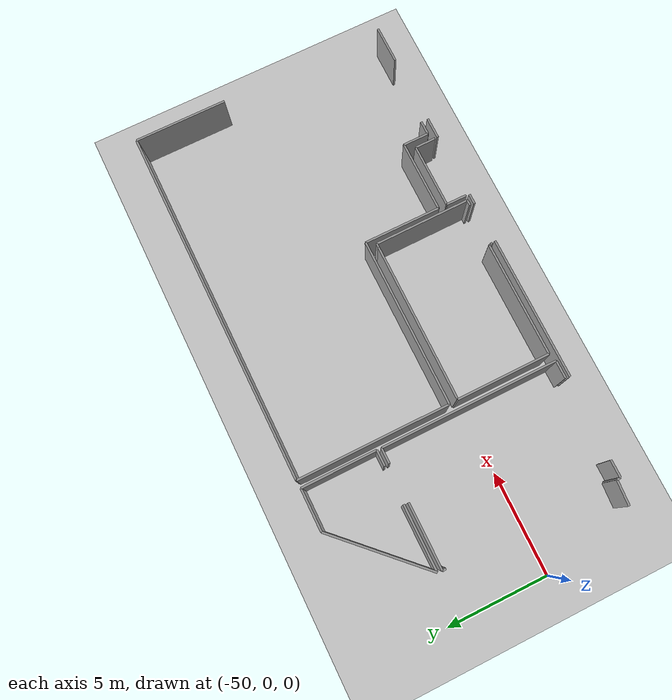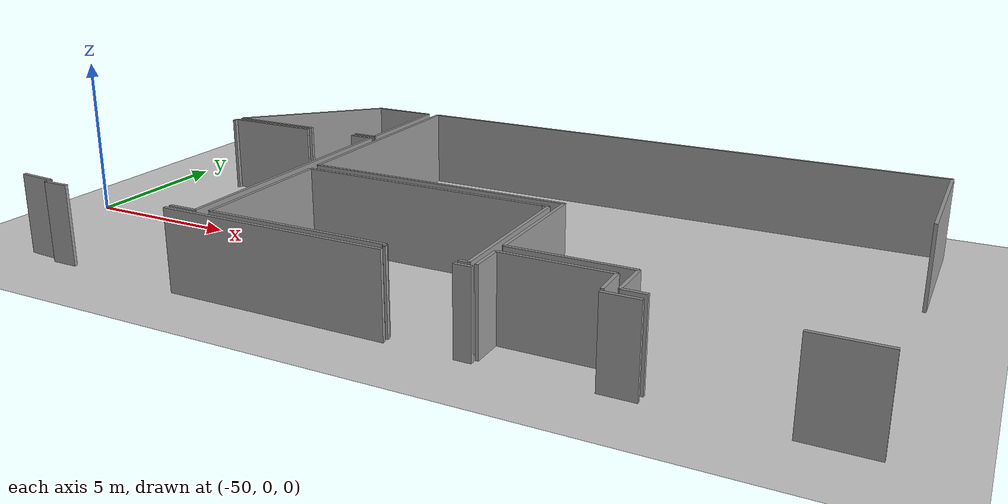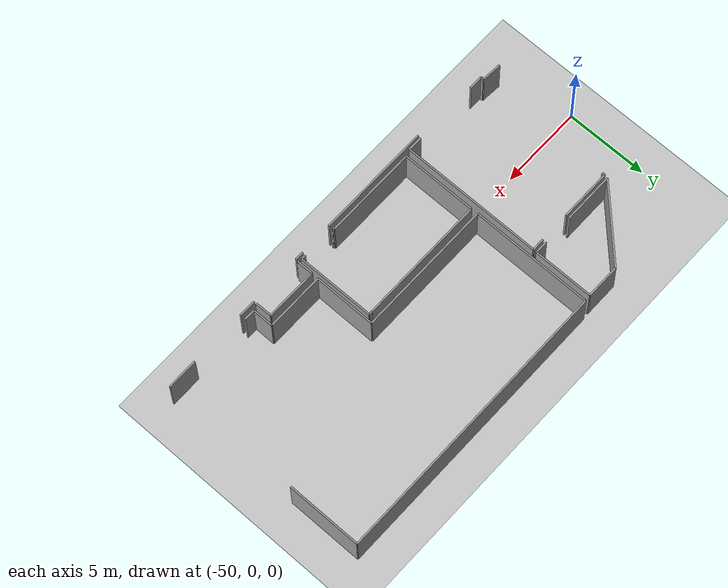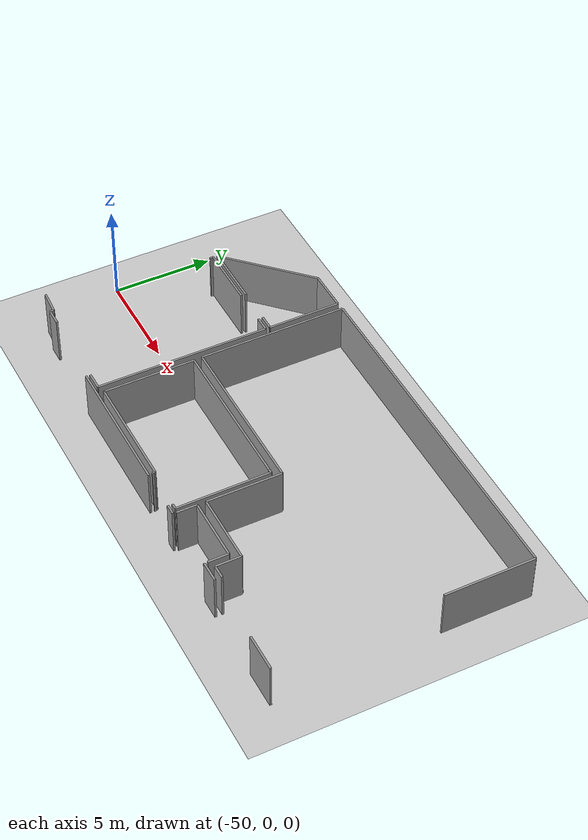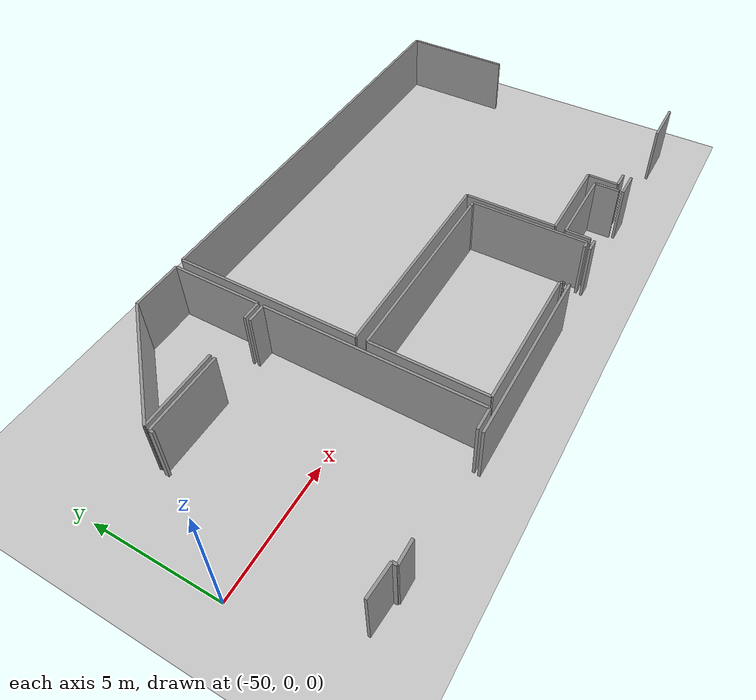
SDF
<sdf version="1.6">
 <world name="default">
  <model name="ground_plane">
   <static>1</static>
   <link name="link">
    <collision name="collision">
     <geometry><plane><normal>0 0 1</normal><size>100 100</size></plane></geometry>
     <surface><friction><ode><mu>100</mu><mu2>50</mu2></ode></friction></surface>
    </collision>
    <visual name="visual">
     <cast_shadows>0</cast_shadows>
     <geometry><plane><normal>0 0 1</normal><size>100 100</size></plane></geometry>
     <material>
      <script><uri>file://media/materials/scripts/gazebo.material</uri><name>Gazebo/Grey</name></script>
     </material>
    </visual>
   </link>
  </model>
  <model name="50041186">
   <static>1</static>
   <link name="Wall_24">
    <collision name="Wall_24_Collision">
     <geometry><box><size>6.98346818975 0.1 2.5</size></box></geometry>
     <pose>3.49173409488 0 1.25 0 0 0</pose>
    </collision>
    <visual name="Wall_24_Visual">
     <pose>3.49173409488 0 1.25 0 0 0</pose>
     <geometry><box><size>6.98346818975 0.1 2.5</size></box></geometry>
     <material>
      <script><uri>file://media/materials/scripts/gazebo.material</uri><name>Gazebo/Grey</name></script>
      <ambient>1 1 1 1</ambient>
     </material>
    </visual>
    <pose>17.1131207362 -12.9118197684 0 0 0 0.0</pose>
   </link>
   <link name="Wall_25">
    <collision name="Wall_25_Collision">
     <geometry><box><size>0.503125495796 0.1 2.5</size></box></geometry>
     <pose>0.251562747898 0 1.25 0 0 0</pose>
    </collision>
    <visual name="Wall_25_Visual">
     <pose>0.251562747898 0 1.25 0 0 0</pose>
     <geometry><box><size>0.503125495796 0.1 2.5</size></box></geometry>
     <material>
      <script><uri>file://media/materials/scripts/gazebo.material</uri><name>Gazebo/Grey</name></script>
      <ambient>1 1 1 1</ambient>
     </material>
    </visual>
    <pose>26.0928446771 -12.9118197684 0 0 0 0.0</pose>
   </link>
   <link name="Wall_26">
    <collision name="Wall_26_Collision">
     <geometry><box><size>1.02110106299 0.1 2.5</size></box></geometry>
     <pose>0.510550531493 0 1.25 0 0 0</pose>
    </collision>
    <visual name="Wall_26_Visual">
     <pose>0.510550531493 0 1.25 0 0 0</pose>
     <geometry><box><size>1.02110106299 0.1 2.5</size></box></geometry>
     <material>
      <script><uri>file://media/materials/scripts/gazebo.material</uri><name>Gazebo/Grey</name></script>
      <ambient>1 1 1 1</ambient>
     </material>
    </visual>
    <pose>29.7769316199 -12.9118197684 0 0 0 0.0</pose>
   </link>
   <link name="Wall_27">
    <collision name="Wall_27_Collision">
     <geometry><box><size>1.84572425829 0.1 2.5</size></box></geometry>
     <pose>0.922862129145 0 1.25 0 0 0</pose>
    </collision>
    <visual name="Wall_27_Visual">
     <pose>0.922862129145 0 1.25 0 0 0</pose>
     <geometry><box><size>1.84572425829 0.1 2.5</size></box></geometry>
     <material>
      <script><uri>file://media/materials/scripts/gazebo.material</uri><name>Gazebo/Grey</name></script>
      <ambient>1 1 1 1</ambient>
     </material>
    </visual>
    <pose>34.1938759321 -12.9118197684 0 0 0 0.0</pose>
   </link>
   <link name="Wall_30">
    <collision name="Wall_30_Collision">
     <geometry><box><size>0.87348881485 0.1 2.5</size></box></geometry>
     <pose>0.436744407425 0 1.25 0 0 0</pose>
    </collision>
    <visual name="Wall_30_Visual">
     <pose>0.436744407425 0 1.25 0 0 0</pose>
     <geometry><box><size>0.87348881485 0.1 2.5</size></box></geometry>
     <material>
      <script><uri>file://media/materials/scripts/gazebo.material</uri><name>Gazebo/Grey</name></script>
      <ambient>1 1 1 1</ambient>
     </material>
    </visual>
    <pose>18.0135173727 -12.7075995558 0 0 0 3.14159265359</pose>
   </link>
   <link name="Wall_31">
    <collision name="Wall_31_Collision">
     <geometry><box><size>0.841757893067 0.1 2.5</size></box></geometry>
     <pose>0.420878946533 0 1.25 0 0 0</pose>
    </collision>
    <visual name="Wall_31_Visual">
     <pose>0.420878946533 0 1.25 0 0 0</pose>
     <geometry><box><size>0.841757893067 0.1 2.5</size></box></geometry>
     <material>
      <script><uri>file://media/materials/scripts/gazebo.material</uri><name>Gazebo/Grey</name></script>
      <ambient>1 1 1 1</ambient>
     </material>
    </visual>
    <pose>13.1731556402 -12.7075995558 0 0 0 3.14159265359</pose>
   </link>
   <link name="Wall_32">
    <collision name="Wall_32_Collision">
     <geometry><box><size>0.181373948913 0.1 2.5</size></box></geometry>
     <pose>0.0906869744566 0 1.25 0 0 0</pose>
    </collision>
    <visual name="Wall_32_Visual">
     <pose>0.0906869744566 0 1.25 0 0 0</pose>
     <geometry><box><size>0.181373948913 0.1 2.5</size></box></geometry>
     <material>
      <script><uri>file://media/materials/scripts/gazebo.material</uri><name>Gazebo/Grey</name></script>
      <ambient>1 1 1 1</ambient>
     </material>
    </visual>
    <pose>12.3313977471 -12.7075995558 0 0 0 1.57079632679</pose>
   </link>
   <link name="Wall_33">
    <collision name="Wall_33_Collision">
     <geometry><box><size>1.19602337415 0.1 2.5</size></box></geometry>
     <pose>0.598011687073 0 1.25 0 0 0</pose>
    </collision>
    <visual name="Wall_33_Visual">
     <pose>0.598011687073 0 1.25 0 0 0</pose>
     <geometry><box><size>1.19602337415 0.1 2.5</size></box></geometry>
     <material>
      <script><uri>file://media/materials/scripts/gazebo.material</uri><name>Gazebo/Grey</name></script>
      <ambient>1 1 1 1</ambient>
     </material>
    </visual>
    <pose>12.3313977471 -12.5262256069 0 0 0 3.07298441104</pose>
   </link>
   <link name="Wall_45">
    <collision name="Wall_45_Collision">
     <geometry><box><size>0.176550848802 0.1 2.5</size></box></geometry>
     <pose>0.0882754244011 0 1.25 0 0 0</pose>
    </collision>
    <visual name="Wall_45_Visual">
     <pose>0.0882754244011 0 1.25 0 0 0</pose>
     <geometry><box><size>0.176550848802 0.1 2.5</size></box></geometry>
     <material>
      <script><uri>file://media/materials/scripts/gazebo.material</uri><name>Gazebo/Grey</name></script>
      <ambient>1 1 1 1</ambient>
     </material>
    </visual>
    <pose>12.311978423 -4.28494367761 0 0 0 1.57079632679</pose>
   </link>
   <link name="Wall_46">
    <collision name="Wall_46_Collision">
     <geometry><box><size>3.12321116928 0.1 2.5</size></box></geometry>
     <pose>1.56160558464 0 1.25 0 0 0</pose>
    </collision>
    <visual name="Wall_46_Visual">
     <pose>1.56160558464 0 1.25 0 0 0</pose>
     <geometry><box><size>3.12321116928 0.1 2.5</size></box></geometry>
     <material>
      <script><uri>file://media/materials/scripts/gazebo.material</uri><name>Gazebo/Grey</name></script>
      <ambient>1 1 1 1</ambient>
     </material>
    </visual>
    <pose>12.311978423 -4.10839282881 0 0 0 0.0</pose>
   </link>
   <link name="Wall_47">
    <collision name="Wall_47_Collision">
     <geometry><box><size>0.753926701571 0.1 2.5</size></box></geometry>
     <pose>0.376963350785 0 1.25 0 0 0</pose>
    </collision>
    <visual name="Wall_47_Visual">
     <pose>0.376963350785 0 1.25 0 0 0</pose>
     <geometry><box><size>0.753926701571 0.1 2.5</size></box></geometry>
     <material>
      <script><uri>file://media/materials/scripts/gazebo.material</uri><name>Gazebo/Grey</name></script>
      <ambient>1 1 1 1</ambient>
     </material>
    </visual>
    <pose>17.2600983659 -4.10839282881 0 0 0 0.0</pose>
   </link>
   <link name="Wall_48">
    <collision name="Wall_48_Collision">
     <geometry><box><size>8.59920674194 0.1 2.5</size></box></geometry>
     <pose>4.29960337097 0 1.25 0 0 0</pose>
    </collision>
    <visual name="Wall_48_Visual">
     <pose>4.29960337097 0 1.25 0 0 0</pose>
     <geometry><box><size>8.59920674194 0.1 2.5</size></box></geometry>
     <material>
      <script><uri>file://media/materials/scripts/gazebo.material</uri><name>Gazebo/Grey</name></script>
      <ambient>1 1 1 1</ambient>
     </material>
    </visual>
    <pose>18.0140250674 -4.10839282881 0 0 0 -1.57085536651</pose>
   </link>
   <link name="Wall_49">
    <collision name="Wall_49_Collision">
     <geometry><box><size>0.766238299223 0.1 2.5</size></box></geometry>
     <pose>0.383119149611 0 1.25 0 0 0</pose>
    </collision>
    <visual name="Wall_49_Visual">
     <pose>0.383119149611 0 1.25 0 0 0</pose>
     <geometry><box><size>0.766238299223 0.1 2.5</size></box></geometry>
     <material>
      <script><uri>file://media/materials/scripts/gazebo.material</uri><name>Gazebo/Grey</name></script>
      <ambient>1 1 1 1</ambient>
     </material>
    </visual>
    <pose>18.0224020308 -3.88640330002 0 0 0 3.14159265359</pose>
   </link>
   <link name="Wall_50">
    <collision name="Wall_50_Collision">
     <geometry><box><size>3.10239568459 0.1 2.5</size></box></geometry>
     <pose>1.5511978423 0 1.25 0 0 0</pose>
    </collision>
    <visual name="Wall_50_Visual">
     <pose>1.5511978423 0 1.25 0 0 0</pose>
     <geometry><box><size>3.10239568459 0.1 2.5</size></box></geometry>
     <material>
      <script><uri>file://media/materials/scripts/gazebo.material</uri><name>Gazebo/Grey</name></script>
      <ambient>1 1 1 1</ambient>
     </material>
    </visual>
    <pose>15.4528319848 -3.88640330002 0 0 0 3.14159265359</pose>
   </link>
   <link name="Wall_51">
    <collision name="Wall_51_Collision">
     <geometry><box><size>5.12652999993 0.1 2.5</size></box></geometry>
     <pose>2.56326499996 0 1.25 0 0 0</pose>
    </collision>
    <visual name="Wall_51_Visual">
     <pose>2.56326499996 0 1.25 0 0 0</pose>
     <geometry><box><size>5.12652999993 0.1 2.5</size></box></geometry>
     <material>
      <script><uri>file://media/materials/scripts/gazebo.material</uri><name>Gazebo/Grey</name></script>
      <ambient>1 1 1 1</ambient>
     </material>
    </visual>
    <pose>12.3504363002 -3.88640330002 0 0 0 0.785100549569</pose>
   </link>
   <link name="Wall_52">
    <collision name="Wall_52_Collision">
     <geometry><box><size>2.03750594955 0.1 2.5</size></box></geometry>
     <pose>1.01875297477 0 1.25 0 0 0</pose>
    </collision>
    <visual name="Wall_52_Visual">
     <pose>1.01875297477 0 1.25 0 0 0</pose>
     <geometry><box><size>2.03750594955 0.1 2.5</size></box></geometry>
     <material>
      <script><uri>file://media/materials/scripts/gazebo.material</uri><name>Gazebo/Grey</name></script>
      <ambient>1 1 1 1</ambient>
     </material>
    </visual>
    <pose>15.9765191179 -0.262478184991 0 0 0 0.0</pose>
   </link>
   <link name="Wall_53">
    <collision name="Wall_53_Collision">
     <geometry><box><size>3.62393479699 0.1 2.5</size></box></geometry>
     <pose>1.81196739849 0 1.25 0 0 0</pose>
    </collision>
    <visual name="Wall_53_Visual">
     <pose>1.81196739849 0 1.25 0 0 0</pose>
     <geometry><box><size>3.62393479699 0.1 2.5</size></box></geometry>
     <material>
      <script><uri>file://media/materials/scripts/gazebo.material</uri><name>Gazebo/Grey</name></script>
      <ambient>1 1 1 1</ambient>
     </material>
    </visual>
    <pose>18.0140250674 -0.262478184991 0 0 0 -1.56848475904</pose>
   </link>
   <link name="Wall_54">
    <collision name="Wall_54_Collision">
     <geometry><box><size>0.271362843091 0.1 2.5</size></box></geometry>
     <pose>0.135681421545 0 1.25 0 0 0</pose>
    </collision>
    <visual name="Wall_54_Visual">
     <pose>0.135681421545 0 1.25 0 0 0</pose>
     <geometry><box><size>0.271362843091 0.1 2.5</size></box></geometry>
     <material>
      <script><uri>file://media/materials/scripts/gazebo.material</uri><name>Gazebo/Grey</name></script>
      <ambient>1 1 1 1</ambient>
     </material>
    </visual>
    <pose>26.389846105 -12.6956687292 0 0 0 3.14159265359</pose>
   </link>
   <link name="Wall_55">
    <collision name="Wall_55_Collision">
     <geometry><box><size>0.0767888307155 0.1 2.5</size></box></geometry>
     <pose>0.0383944153578 0 1.25 0 0 0</pose>
    </collision>
    <visual name="Wall_55_Visual">
     <pose>0.0383944153578 0 1.25 0 0 0</pose>
     <geometry><box><size>0.0767888307155 0.1 2.5</size></box></geometry>
     <material>
      <script><uri>file://media/materials/scripts/gazebo.material</uri><name>Gazebo/Grey</name></script>
      <ambient>1 1 1 1</ambient>
     </material>
    </visual>
    <pose>24.0986197049 -12.6956687292 0 0 0 3.14159265359</pose>
   </link>
   <link name="Wall_56">
    <collision name="Wall_56_Collision">
     <geometry><box><size>0.118546723782 0.1 2.5</size></box></geometry>
     <pose>0.0592733618912 0 1.25 0 0 0</pose>
    </collision>
    <visual name="Wall_56_Visual">
     <pose>0.0592733618912 0 1.25 0 0 0</pose>
     <geometry><box><size>0.118546723782 0.1 2.5</size></box></geometry>
     <material>
      <script><uri>file://media/materials/scripts/gazebo.material</uri><name>Gazebo/Grey</name></script>
      <ambient>1 1 1 1</ambient>
     </material>
    </visual>
    <pose>24.0218308742 -12.6956687292 0 0 0 1.57079632679</pose>
   </link>
   <link name="Wall_57">
    <collision name="Wall_57_Collision">
     <geometry><box><size>5.60228462637 0.1 2.5</size></box></geometry>
     <pose>2.80114231318 0 1.25 0 0 0</pose>
    </collision>
    <visual name="Wall_57_Visual">
     <pose>2.80114231318 0 1.25 0 0 0</pose>
     <geometry><box><size>5.60228462637 0.1 2.5</size></box></geometry>
     <material>
      <script><uri>file://media/materials/scripts/gazebo.material</uri><name>Gazebo/Grey</name></script>
      <ambient>1 1 1 1</ambient>
     </material>
    </visual>
    <pose>24.0218308742 -12.5771220054 0 0 0 3.14159265359</pose>
   </link>
   <link name="Wall_58">
    <collision name="Wall_58_Collision">
     <geometry><box><size>4.54894494685 0.1 2.5</size></box></geometry>
     <pose>2.27447247343 0 1.25 0 0 0</pose>
    </collision>
    <visual name="Wall_58_Visual">
     <pose>2.27447247343 0 1.25 0 0 0</pose>
     <geometry><box><size>4.54894494685 0.1 2.5</size></box></geometry>
     <material>
      <script><uri>file://media/materials/scripts/gazebo.material</uri><name>Gazebo/Grey</name></script>
      <ambient>1 1 1 1</ambient>
     </material>
    </visual>
    <pose>18.4195462478 -12.5771220054 0 0 0 1.57079632679</pose>
   </link>
   <link name="Wall_59">
    <collision name="Wall_59_Collision">
     <geometry><box><size>7.7494526416 0.1 2.5</size></box></geometry>
     <pose>3.8747263208 0 1.25 0 0 0</pose>
    </collision>
    <visual name="Wall_59_Visual">
     <pose>3.8747263208 0 1.25 0 0 0</pose>
     <geometry><box><size>7.7494526416 0.1 2.5</size></box></geometry>
     <material>
      <script><uri>file://media/materials/scripts/gazebo.material</uri><name>Gazebo/Grey</name></script>
      <ambient>1 1 1 1</ambient>
     </material>
    </visual>
    <pose>18.4195462478 -8.02817705854 0 0 0 0.0</pose>
   </link>
   <link name="Wall_60">
    <collision name="Wall_60_Collision">
     <geometry><box><size>0.189243217515 0.1 2.5</size></box></geometry>
     <pose>0.0946216087577 0 1.25 0 0 0</pose>
    </collision>
    <visual name="Wall_60_Visual">
     <pose>0.0946216087577 0 1.25 0 0 0</pose>
     <geometry><box><size>0.189243217515 0.1 2.5</size></box></geometry>
     <material>
      <script><uri>file://media/materials/scripts/gazebo.material</uri><name>Gazebo/Grey</name></script>
      <ambient>1 1 1 1</ambient>
     </material>
    </visual>
    <pose>26.1689988894 -8.02817705854 0 0 0 0.0</pose>
   </link>
   <link name="Wall_61">
    <collision name="Wall_61_Collision">
     <geometry><box><size>4.66759866614 0.1 2.5</size></box></geometry>
     <pose>2.33379933307 0 1.25 0 0 0</pose>
    </collision>
    <visual name="Wall_61_Visual">
     <pose>2.33379933307 0 1.25 0 0 0</pose>
     <geometry><box><size>4.66759866614 0.1 2.5</size></box></geometry>
     <material>
      <script><uri>file://media/materials/scripts/gazebo.material</uri><name>Gazebo/Grey</name></script>
      <ambient>1 1 1 1</ambient>
     </material>
    </visual>
    <pose>26.3582421069 -8.02817705854 0 0 0 -1.564025342</pose>
   </link>
   <link name="Wall_62">
    <collision name="Wall_62_Collision">
     <geometry><box><size>1.00472790735 0.1 2.5</size></box></geometry>
     <pose>0.502363953673 0 1.25 0 0 0</pose>
    </collision>
    <visual name="Wall_62_Visual">
     <pose>0.502363953673 0 1.25 0 0 0</pose>
     <geometry><box><size>1.00472790735 0.1 2.5</size></box></geometry>
     <material>
      <script><uri>file://media/materials/scripts/gazebo.material</uri><name>Gazebo/Grey</name></script>
      <ambient>1 1 1 1</ambient>
     </material>
    </visual>
    <pose>26.6283357132 -12.7587498017 0 0 0 1.57079632679</pose>
   </link>
   <link name="Wall_63">
    <collision name="Wall_63_Collision">
     <geometry><box><size>3.13323814057 0.1 2.5</size></box></geometry>
     <pose>1.56661907028 0 1.25 0 0 0</pose>
    </collision>
    <visual name="Wall_63_Visual">
     <pose>1.56661907028 0 1.25 0 0 0</pose>
     <geometry><box><size>3.13323814057 0.1 2.5</size></box></geometry>
     <material>
      <script><uri>file://media/materials/scripts/gazebo.material</uri><name>Gazebo/Grey</name></script>
      <ambient>1 1 1 1</ambient>
     </material>
    </visual>
    <pose>26.6283357132 -11.7540218943 0 0 0 0.0</pose>
   </link>
   <link name="Wall_64">
    <collision name="Wall_64_Collision">
     <geometry><box><size>1.00487184863 0.1 2.5</size></box></geometry>
     <pose>0.502435924317 0 1.25 0 0 0</pose>
    </collision>
    <visual name="Wall_64_Visual">
     <pose>0.502435924317 0 1.25 0 0 0</pose>
     <geometry><box><size>1.00487184863 0.1 2.5</size></box></geometry>
     <material>
      <script><uri>file://media/materials/scripts/gazebo.material</uri><name>Gazebo/Grey</name></script>
      <ambient>1 1 1 1</ambient>
     </material>
    </visual>
    <pose>29.7615738537 -11.7540218943 0 0 0 -1.55387020211</pose>
   </link>
   <link name="Wall_66">
    <collision name="Wall_66_Collision">
     <geometry><box><size>0.673203236554 0.1 2.5</size></box></geometry>
     <pose>0.336601618277 0 1.25 0 0 0</pose>
    </collision>
    <visual name="Wall_66_Visual">
     <pose>0.336601618277 0 1.25 0 0 0</pose>
     <geometry><box><size>0.673203236554 0.1 2.5</size></box></geometry>
     <material>
      <script><uri>file://media/materials/scripts/gazebo.material</uri><name>Gazebo/Grey</name></script>
      <ambient>1 1 1 1</ambient>
     </material>
    </visual>
    <pose>30.8055211804 -12.5740758369 0 0 0 3.14159265359</pose>
   </link>
   <link name="Wall_67">
    <collision name="Wall_67_Collision">
     <geometry><box><size>1.24626368396 0.1 2.5</size></box></geometry>
     <pose>0.62313184198 0 1.25 0 0 0</pose>
    </collision>
    <visual name="Wall_67_Visual">
     <pose>0.62313184198 0 1.25 0 0 0</pose>
     <geometry><box><size>1.24626368396 0.1 2.5</size></box></geometry>
     <material>
      <script><uri>file://media/materials/scripts/gazebo.material</uri><name>Gazebo/Grey</name></script>
      <ambient>1 1 1 1</ambient>
     </material>
    </visual>
    <pose>30.1323179438 -12.5740758369 0 0 0 1.57079632679</pose>
   </link>
   <link name="Wall_68">
    <collision name="Wall_68_Collision">
     <geometry><box><size>3.49763604633 0.1 2.5</size></box></geometry>
     <pose>1.74881802316 0 1.25 0 0 0</pose>
    </collision>
    <visual name="Wall_68_Visual">
     <pose>1.74881802316 0 1.25 0 0 0</pose>
     <geometry><box><size>3.49763604633 0.1 2.5</size></box></geometry>
     <material>
      <script><uri>file://media/materials/scripts/gazebo.material</uri><name>Gazebo/Grey</name></script>
      <ambient>1 1 1 1</ambient>
     </material>
    </visual>
    <pose>30.1323179438 -11.3278121529 0 0 0 3.14159265359</pose>
   </link>
   <link name="Wall_69">
    <collision name="Wall_69_Collision">
     <geometry><box><size>3.71924480406 0.1 2.5</size></box></geometry>
     <pose>1.85962240203 0 1.25 0 0 0</pose>
    </collision>
    <visual name="Wall_69_Visual">
     <pose>1.85962240203 0 1.25 0 0 0</pose>
     <geometry><box><size>3.71924480406 0.1 2.5</size></box></geometry>
     <material>
      <script><uri>file://media/materials/scripts/gazebo.material</uri><name>Gazebo/Grey</name></script>
      <ambient>1 1 1 1</ambient>
     </material>
    </visual>
    <pose>26.6346818975 -11.3278121529 0 0 0 1.57079632679</pose>
   </link>
   <link name="Wall_70">
    <collision name="Wall_70_Collision">
     <geometry><box><size>8.23950499762 0.1 2.5</size></box></geometry>
     <pose>4.11975249881 0 1.25 0 0 0</pose>
    </collision>
    <visual name="Wall_70_Visual">
     <pose>4.11975249881 0 1.25 0 0 0</pose>
     <geometry><box><size>8.23950499762 0.1 2.5</size></box></geometry>
     <material>
      <script><uri>file://media/materials/scripts/gazebo.material</uri><name>Gazebo/Grey</name></script>
      <ambient>1 1 1 1</ambient>
     </material>
    </visual>
    <pose>26.6346818975 -7.60856734888 0 0 0 3.14159265359</pose>
   </link>
   <link name="Wall_71">
    <collision name="Wall_71_Collision">
     <geometry><box><size>7.38391242266 0.1 2.5</size></box></geometry>
     <pose>3.69195621133 0 1.25 0 0 0</pose>
    </collision>
    <visual name="Wall_71_Visual">
     <pose>3.69195621133 0 1.25 0 0 0</pose>
     <geometry><box><size>7.38391242266 0.1 2.5</size></box></geometry>
     <material>
      <script><uri>file://media/materials/scripts/gazebo.material</uri><name>Gazebo/Grey</name></script>
      <ambient>1 1 1 1</ambient>
     </material>
    </visual>
    <pose>18.3951768999 -7.60856734888 0 0 0 1.57079632679</pose>
   </link>
   <link name="Wall_72">
    <collision name="Wall_72_Collision">
     <geometry><box><size>17.4773917182 0.1 2.5</size></box></geometry>
     <pose>8.73869585911 0 1.25 0 0 0</pose>
    </collision>
    <visual name="Wall_72_Visual">
     <pose>8.73869585911 0 1.25 0 0 0</pose>
     <geometry><box><size>17.4773917182 0.1 2.5</size></box></geometry>
     <material>
      <script><uri>file://media/materials/scripts/gazebo.material</uri><name>Gazebo/Grey</name></script>
      <ambient>1 1 1 1</ambient>
     </material>
    </visual>
    <pose>18.3951768999 -0.224654926226 0 0 0 0.0</pose>
   </link>
   <link name="Wall_73">
    <collision name="Wall_73_Collision">
     <geometry><box><size>4.4942408377 0.1 2.5</size></box></geometry>
     <pose>2.24712041885 0 1.25 0 0 0</pose>
    </collision>
    <visual name="Wall_73_Visual">
     <pose>2.24712041885 0 1.25 0 0 0</pose>
     <geometry><box><size>4.4942408377 0.1 2.5</size></box></geometry>
     <material>
      <script><uri>file://media/materials/scripts/gazebo.material</uri><name>Gazebo/Grey</name></script>
      <ambient>1 1 1 1</ambient>
     </material>
    </visual>
    <pose>35.8725686181 -0.224654926226 0 0 0 -1.57079632679</pose>
   </link>
   <pose>-59.9 8.31532603522 0 0 0 0</pose>
  </model>
 </world>
</sdf>
